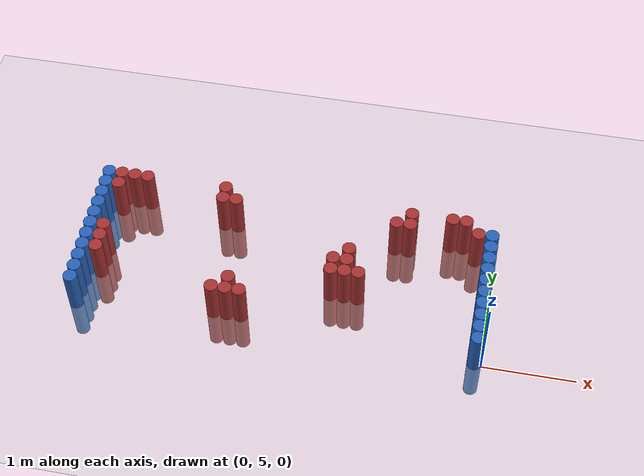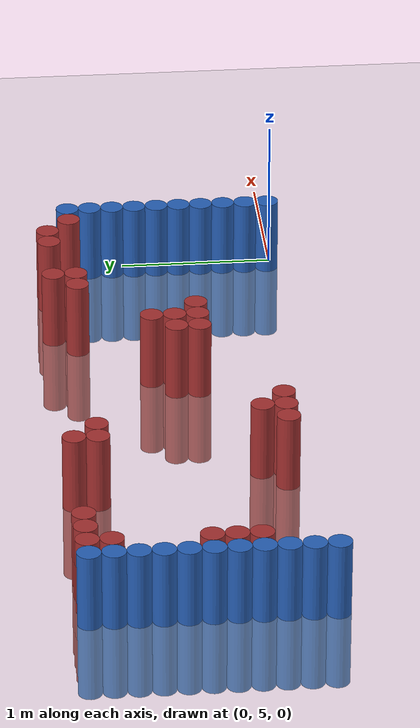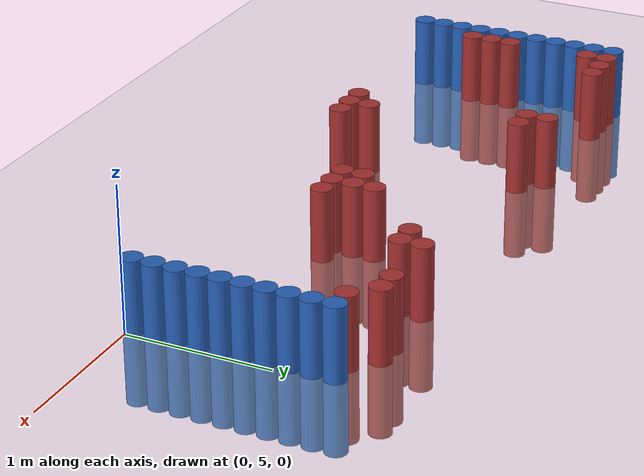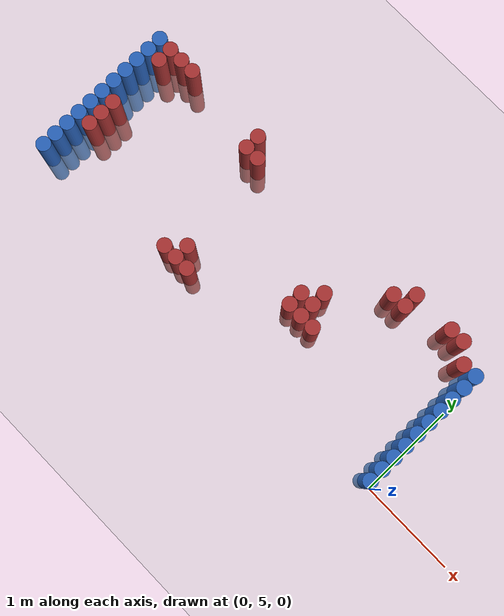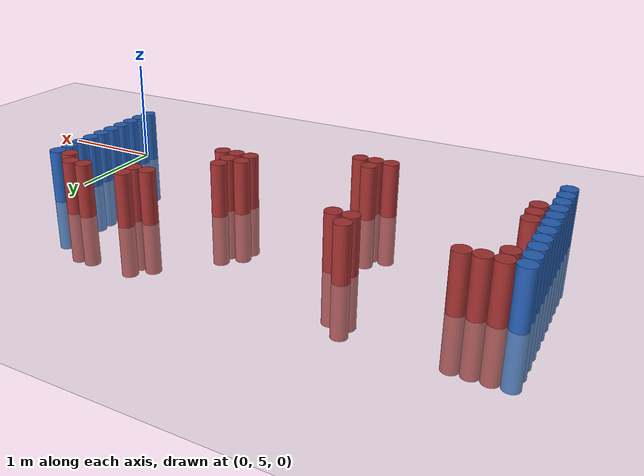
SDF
<sdf version="1.6">
 <world name="world_13">
  <model name="ground_plane">
   <static>1</static>
   <link name="link">
    <collision name="collision">
     <geometry><plane><normal>0 0 1</normal><size>100 100</size></plane></geometry>
     <surface><friction><ode><mu>100</mu><mu2>50</mu2></ode></friction></surface>
    </collision>
    <visual name="visual">
     <cast_shadows>0</cast_shadows>
     <geometry><plane><normal>0 0 1</normal><size>100 100</size></plane></geometry>
     <material>
      <script><uri>file://media/materials/scripts/gazebo.material</uri><name>Gazebo/Grey</name></script>
     </material>
    </visual>
   </link>
  </model>
  <model name="unit_cylinder_94">
   <static>1</static>
   <pose>-0.075000 5.025000 0.000000 0.000000 0.000000 0.000000</pose>
   <link name="link">
    <inertial>
     <mass>1</mass>
     <inertia><ixx>0.145833</ixx><ixy>0</ixy><ixz>0</ixz><iyy>0.145833</iyy><iyz>0</iyz><izz>0.125</izz></inertia>
    </inertial>
    <collision name="collision">
     <geometry><cylinder><radius>0.075000</radius><length>1</length></cylinder></geometry>
    </collision>
    <visual name="visual">
     <geometry><cylinder><radius>0.075000</radius><length>1</length></cylinder></geometry>
     <material>
      <ambient>0.152000 0.379000 0.720000 1</ambient>
      <diffuse>0.152000 0.379000 0.720000 1</diffuse>
     </material>
     <material>
      <script><name>Gazebo/Grey</name><uri>file://media/materials/scripts/gazebo.material</uri></script>
     </material>
    </visual>
   </link>
  </model>
  <model name="unit_cylinder_95">
   <static>1</static>
   <pose>-4.425000 5.025000 0.000000 0.000000 0.000000 0.000000</pose>
   <link name="link">
    <inertial>
     <mass>1</mass>
     <inertia><ixx>0.145833</ixx><ixy>0</ixy><ixz>0</ixz><iyy>0.145833</iyy><iyz>0</iyz><izz>0.125</izz></inertia>
    </inertial>
    <collision name="collision">
     <geometry><cylinder><radius>0.075000</radius><length>1</length></cylinder></geometry>
    </collision>
    <visual name="visual">
     <geometry><cylinder><radius>0.075000</radius><length>1</length></cylinder></geometry>
     <material>
      <ambient>0.152000 0.379000 0.720000 1</ambient>
      <diffuse>0.152000 0.379000 0.720000 1</diffuse>
     </material>
     <material>
      <script><name>Gazebo/Grey</name><uri>file://media/materials/scripts/gazebo.material</uri></script>
     </material>
    </visual>
   </link>
  </model>
  <model name="unit_cylinder_96">
   <static>1</static>
   <pose>-4.425000 5.175000 0.000000 0.000000 0.000000 0.000000</pose>
   <link name="link">
    <inertial>
     <mass>1</mass>
     <inertia><ixx>0.145833</ixx><ixy>0</ixy><ixz>0</ixz><iyy>0.145833</iyy><iyz>0</iyz><izz>0.125</izz></inertia>
    </inertial>
    <collision name="collision">
     <geometry><cylinder><radius>0.075000</radius><length>1</length></cylinder></geometry>
    </collision>
    <visual name="visual">
     <geometry><cylinder><radius>0.075000</radius><length>1</length></cylinder></geometry>
     <material>
      <ambient>0.152000 0.379000 0.720000 1</ambient>
      <diffuse>0.152000 0.379000 0.720000 1</diffuse>
     </material>
     <material>
      <script><name>Gazebo/Grey</name><uri>file://media/materials/scripts/gazebo.material</uri></script>
     </material>
    </visual>
   </link>
  </model>
  <model name="unit_cylinder_97">
   <static>1</static>
   <pose>-4.425000 5.325000 0.000000 0.000000 0.000000 0.000000</pose>
   <link name="link">
    <inertial>
     <mass>1</mass>
     <inertia><ixx>0.145833</ixx><ixy>0</ixy><ixz>0</ixz><iyy>0.145833</iyy><iyz>0</iyz><izz>0.125</izz></inertia>
    </inertial>
    <collision name="collision">
     <geometry><cylinder><radius>0.075000</radius><length>1</length></cylinder></geometry>
    </collision>
    <visual name="visual">
     <geometry><cylinder><radius>0.075000</radius><length>1</length></cylinder></geometry>
     <material>
      <ambient>0.152000 0.379000 0.720000 1</ambient>
      <diffuse>0.152000 0.379000 0.720000 1</diffuse>
     </material>
     <material>
      <script><name>Gazebo/Grey</name><uri>file://media/materials/scripts/gazebo.material</uri></script>
     </material>
    </visual>
   </link>
  </model>
  <model name="unit_cylinder_98">
   <static>1</static>
   <pose>-4.425000 5.475000 0.000000 0.000000 0.000000 0.000000</pose>
   <link name="link">
    <inertial>
     <mass>1</mass>
     <inertia><ixx>0.145833</ixx><ixy>0</ixy><ixz>0</ixz><iyy>0.145833</iyy><iyz>0</iyz><izz>0.125</izz></inertia>
    </inertial>
    <collision name="collision">
     <geometry><cylinder><radius>0.075000</radius><length>1</length></cylinder></geometry>
    </collision>
    <visual name="visual">
     <geometry><cylinder><radius>0.075000</radius><length>1</length></cylinder></geometry>
     <material>
      <ambient>0.152000 0.379000 0.720000 1</ambient>
      <diffuse>0.152000 0.379000 0.720000 1</diffuse>
     </material>
     <material>
      <script><name>Gazebo/Grey</name><uri>file://media/materials/scripts/gazebo.material</uri></script>
     </material>
    </visual>
   </link>
  </model>
  <model name="unit_cylinder_99">
   <static>1</static>
   <pose>-4.425000 5.625000 0.000000 0.000000 0.000000 0.000000</pose>
   <link name="link">
    <inertial>
     <mass>1</mass>
     <inertia><ixx>0.145833</ixx><ixy>0</ixy><ixz>0</ixz><iyy>0.145833</iyy><iyz>0</iyz><izz>0.125</izz></inertia>
    </inertial>
    <collision name="collision">
     <geometry><cylinder><radius>0.075000</radius><length>1</length></cylinder></geometry>
    </collision>
    <visual name="visual">
     <geometry><cylinder><radius>0.075000</radius><length>1</length></cylinder></geometry>
     <material>
      <ambient>0.152000 0.379000 0.720000 1</ambient>
      <diffuse>0.152000 0.379000 0.720000 1</diffuse>
     </material>
     <material>
      <script><name>Gazebo/Grey</name><uri>file://media/materials/scripts/gazebo.material</uri></script>
     </material>
    </visual>
   </link>
  </model>
  <model name="unit_cylinder_100">
   <static>1</static>
   <pose>-4.425000 5.775000 0.000000 0.000000 0.000000 0.000000</pose>
   <link name="link">
    <inertial>
     <mass>1</mass>
     <inertia><ixx>0.145833</ixx><ixy>0</ixy><ixz>0</ixz><iyy>0.145833</iyy><iyz>0</iyz><izz>0.125</izz></inertia>
    </inertial>
    <collision name="collision">
     <geometry><cylinder><radius>0.075000</radius><length>1</length></cylinder></geometry>
    </collision>
    <visual name="visual">
     <geometry><cylinder><radius>0.075000</radius><length>1</length></cylinder></geometry>
     <material>
      <ambient>0.152000 0.379000 0.720000 1</ambient>
      <diffuse>0.152000 0.379000 0.720000 1</diffuse>
     </material>
     <material>
      <script><name>Gazebo/Grey</name><uri>file://media/materials/scripts/gazebo.material</uri></script>
     </material>
    </visual>
   </link>
  </model>
  <model name="unit_cylinder_101">
   <static>1</static>
   <pose>-4.425000 5.925000 0.000000 0.000000 0.000000 0.000000</pose>
   <link name="link">
    <inertial>
     <mass>1</mass>
     <inertia><ixx>0.145833</ixx><ixy>0</ixy><ixz>0</ixz><iyy>0.145833</iyy><iyz>0</iyz><izz>0.125</izz></inertia>
    </inertial>
    <collision name="collision">
     <geometry><cylinder><radius>0.075000</radius><length>1</length></cylinder></geometry>
    </collision>
    <visual name="visual">
     <geometry><cylinder><radius>0.075000</radius><length>1</length></cylinder></geometry>
     <material>
      <ambient>0.152000 0.379000 0.720000 1</ambient>
      <diffuse>0.152000 0.379000 0.720000 1</diffuse>
     </material>
     <material>
      <script><name>Gazebo/Grey</name><uri>file://media/materials/scripts/gazebo.material</uri></script>
     </material>
    </visual>
   </link>
  </model>
  <model name="unit_cylinder_102">
   <static>1</static>
   <pose>-4.425000 6.075000 0.000000 0.000000 0.000000 0.000000</pose>
   <link name="link">
    <inertial>
     <mass>1</mass>
     <inertia><ixx>0.145833</ixx><ixy>0</ixy><ixz>0</ixz><iyy>0.145833</iyy><iyz>0</iyz><izz>0.125</izz></inertia>
    </inertial>
    <collision name="collision">
     <geometry><cylinder><radius>0.075000</radius><length>1</length></cylinder></geometry>
    </collision>
    <visual name="visual">
     <geometry><cylinder><radius>0.075000</radius><length>1</length></cylinder></geometry>
     <material>
      <ambient>0.152000 0.379000 0.720000 1</ambient>
      <diffuse>0.152000 0.379000 0.720000 1</diffuse>
     </material>
     <material>
      <script><name>Gazebo/Grey</name><uri>file://media/materials/scripts/gazebo.material</uri></script>
     </material>
    </visual>
   </link>
  </model>
  <model name="unit_cylinder_103">
   <static>1</static>
   <pose>-4.425000 6.225000 0.000000 0.000000 0.000000 0.000000</pose>
   <link name="link">
    <inertial>
     <mass>1</mass>
     <inertia><ixx>0.145833</ixx><ixy>0</ixy><ixz>0</ixz><iyy>0.145833</iyy><iyz>0</iyz><izz>0.125</izz></inertia>
    </inertial>
    <collision name="collision">
     <geometry><cylinder><radius>0.075000</radius><length>1</length></cylinder></geometry>
    </collision>
    <visual name="visual">
     <geometry><cylinder><radius>0.075000</radius><length>1</length></cylinder></geometry>
     <material>
      <ambient>0.152000 0.379000 0.720000 1</ambient>
      <diffuse>0.152000 0.379000 0.720000 1</diffuse>
     </material>
     <material>
      <script><name>Gazebo/Grey</name><uri>file://media/materials/scripts/gazebo.material</uri></script>
     </material>
    </visual>
   </link>
  </model>
  <model name="unit_cylinder_104">
   <static>1</static>
   <pose>-4.425000 6.375000 0.000000 0.000000 0.000000 0.000000</pose>
   <link name="link">
    <inertial>
     <mass>1</mass>
     <inertia><ixx>0.145833</ixx><ixy>0</ixy><ixz>0</ixz><iyy>0.145833</iyy><iyz>0</iyz><izz>0.125</izz></inertia>
    </inertial>
    <collision name="collision">
     <geometry><cylinder><radius>0.075000</radius><length>1</length></cylinder></geometry>
    </collision>
    <visual name="visual">
     <geometry><cylinder><radius>0.075000</radius><length>1</length></cylinder></geometry>
     <material>
      <ambient>0.152000 0.379000 0.720000 1</ambient>
      <diffuse>0.152000 0.379000 0.720000 1</diffuse>
     </material>
     <material>
      <script><name>Gazebo/Grey</name><uri>file://media/materials/scripts/gazebo.material</uri></script>
     </material>
    </visual>
   </link>
  </model>
  <model name="unit_cylinder_105">
   <static>1</static>
   <pose>-4.425000 6.525000 0.000000 0.000000 0.000000 0.000000</pose>
   <link name="link">
    <inertial>
     <mass>1</mass>
     <inertia><ixx>0.145833</ixx><ixy>0</ixy><ixz>0</ixz><iyy>0.145833</iyy><iyz>0</iyz><izz>0.125</izz></inertia>
    </inertial>
    <collision name="collision">
     <geometry><cylinder><radius>0.075000</radius><length>1</length></cylinder></geometry>
    </collision>
    <visual name="visual">
     <geometry><cylinder><radius>0.075000</radius><length>1</length></cylinder></geometry>
     <material>
      <ambient>0.152000 0.379000 0.720000 1</ambient>
      <diffuse>0.152000 0.379000 0.720000 1</diffuse>
     </material>
     <material>
      <script><name>Gazebo/Grey</name><uri>file://media/materials/scripts/gazebo.material</uri></script>
     </material>
    </visual>
   </link>
  </model>
  <model name="unit_cylinder_126">
   <static>1</static>
   <pose>-4.275000 5.475000 0.000000 0.000000 0.000000 0.000000</pose>
   <link name="link">
    <inertial>
     <mass>1</mass>
     <inertia><ixx>0.145833</ixx><ixy>0</ixy><ixz>0</ixz><iyy>0.145833</iyy><iyz>0</iyz><izz>0.125</izz></inertia>
    </inertial>
    <collision name="collision">
     <geometry><cylinder><radius>0.075000</radius><length>1</length></cylinder></geometry>
    </collision>
    <visual name="visual">
     <geometry><cylinder><radius>0.075000</radius><length>1</length></cylinder></geometry>
     <material>
      <ambient>0.648000 0.192000 0.192000 1</ambient>
      <diffuse>0.648000 0.192000 0.192000 1</diffuse>
     </material>
     <material>
      <script><name>Gazebo/Grey</name><uri>file://media/materials/scripts/gazebo.material</uri></script>
     </material>
    </visual>
   </link>
  </model>
  <model name="unit_cylinder_127">
   <static>1</static>
   <pose>-4.275000 5.625000 0.000000 0.000000 0.000000 0.000000</pose>
   <link name="link">
    <inertial>
     <mass>1</mass>
     <inertia><ixx>0.145833</ixx><ixy>0</ixy><ixz>0</ixz><iyy>0.145833</iyy><iyz>0</iyz><izz>0.125</izz></inertia>
    </inertial>
    <collision name="collision">
     <geometry><cylinder><radius>0.075000</radius><length>1</length></cylinder></geometry>
    </collision>
    <visual name="visual">
     <geometry><cylinder><radius>0.075000</radius><length>1</length></cylinder></geometry>
     <material>
      <ambient>0.648000 0.192000 0.192000 1</ambient>
      <diffuse>0.648000 0.192000 0.192000 1</diffuse>
     </material>
     <material>
      <script><name>Gazebo/Grey</name><uri>file://media/materials/scripts/gazebo.material</uri></script>
     </material>
    </visual>
   </link>
  </model>
  <model name="unit_cylinder_128">
   <static>1</static>
   <pose>-4.275000 5.775000 0.000000 0.000000 0.000000 0.000000</pose>
   <link name="link">
    <inertial>
     <mass>1</mass>
     <inertia><ixx>0.145833</ixx><ixy>0</ixy><ixz>0</ixz><iyy>0.145833</iyy><iyz>0</iyz><izz>0.125</izz></inertia>
    </inertial>
    <collision name="collision">
     <geometry><cylinder><radius>0.075000</radius><length>1</length></cylinder></geometry>
    </collision>
    <visual name="visual">
     <geometry><cylinder><radius>0.075000</radius><length>1</length></cylinder></geometry>
     <material>
      <ambient>0.648000 0.192000 0.192000 1</ambient>
      <diffuse>0.648000 0.192000 0.192000 1</diffuse>
     </material>
     <material>
      <script><name>Gazebo/Grey</name><uri>file://media/materials/scripts/gazebo.material</uri></script>
     </material>
    </visual>
   </link>
  </model>
  <model name="unit_cylinder_129">
   <static>1</static>
   <pose>-4.275000 6.375000 0.000000 0.000000 0.000000 0.000000</pose>
   <link name="link">
    <inertial>
     <mass>1</mass>
     <inertia><ixx>0.145833</ixx><ixy>0</ixy><ixz>0</ixz><iyy>0.145833</iyy><iyz>0</iyz><izz>0.125</izz></inertia>
    </inertial>
    <collision name="collision">
     <geometry><cylinder><radius>0.075000</radius><length>1</length></cylinder></geometry>
    </collision>
    <visual name="visual">
     <geometry><cylinder><radius>0.075000</radius><length>1</length></cylinder></geometry>
     <material>
      <ambient>0.648000 0.192000 0.192000 1</ambient>
      <diffuse>0.648000 0.192000 0.192000 1</diffuse>
     </material>
     <material>
      <script><name>Gazebo/Grey</name><uri>file://media/materials/scripts/gazebo.material</uri></script>
     </material>
    </visual>
   </link>
  </model>
  <model name="unit_cylinder_130">
   <static>1</static>
   <pose>-4.275000 6.525000 0.000000 0.000000 0.000000 0.000000</pose>
   <link name="link">
    <inertial>
     <mass>1</mass>
     <inertia><ixx>0.145833</ixx><ixy>0</ixy><ixz>0</ixz><iyy>0.145833</iyy><iyz>0</iyz><izz>0.125</izz></inertia>
    </inertial>
    <collision name="collision">
     <geometry><cylinder><radius>0.075000</radius><length>1</length></cylinder></geometry>
    </collision>
    <visual name="visual">
     <geometry><cylinder><radius>0.075000</radius><length>1</length></cylinder></geometry>
     <material>
      <ambient>0.648000 0.192000 0.192000 1</ambient>
      <diffuse>0.648000 0.192000 0.192000 1</diffuse>
     </material>
     <material>
      <script><name>Gazebo/Grey</name><uri>file://media/materials/scripts/gazebo.material</uri></script>
     </material>
    </visual>
   </link>
  </model>
  <model name="unit_cylinder_137">
   <static>1</static>
   <pose>-4.125000 6.525000 0.000000 0.000000 0.000000 0.000000</pose>
   <link name="link">
    <inertial>
     <mass>1</mass>
     <inertia><ixx>0.145833</ixx><ixy>0</ixy><ixz>0</ixz><iyy>0.145833</iyy><iyz>0</iyz><izz>0.125</izz></inertia>
    </inertial>
    <collision name="collision">
     <geometry><cylinder><radius>0.075000</radius><length>1</length></cylinder></geometry>
    </collision>
    <visual name="visual">
     <geometry><cylinder><radius>0.075000</radius><length>1</length></cylinder></geometry>
     <material>
      <ambient>0.648000 0.192000 0.192000 1</ambient>
      <diffuse>0.648000 0.192000 0.192000 1</diffuse>
     </material>
     <material>
      <script><name>Gazebo/Grey</name><uri>file://media/materials/scripts/gazebo.material</uri></script>
     </material>
    </visual>
   </link>
  </model>
  <model name="unit_cylinder_148">
   <static>1</static>
   <pose>-3.975000 6.525000 0.000000 0.000000 0.000000 0.000000</pose>
   <link name="link">
    <inertial>
     <mass>1</mass>
     <inertia><ixx>0.145833</ixx><ixy>0</ixy><ixz>0</ixz><iyy>0.145833</iyy><iyz>0</iyz><izz>0.125</izz></inertia>
    </inertial>
    <collision name="collision">
     <geometry><cylinder><radius>0.075000</radius><length>1</length></cylinder></geometry>
    </collision>
    <visual name="visual">
     <geometry><cylinder><radius>0.075000</radius><length>1</length></cylinder></geometry>
     <material>
      <ambient>0.648000 0.192000 0.192000 1</ambient>
      <diffuse>0.648000 0.192000 0.192000 1</diffuse>
     </material>
     <material>
      <script><name>Gazebo/Grey</name><uri>file://media/materials/scripts/gazebo.material</uri></script>
     </material>
    </visual>
   </link>
  </model>
  <model name="unit_cylinder_177">
   <static>1</static>
   <pose>-3.075000 6.375000 0.000000 0.000000 0.000000 0.000000</pose>
   <link name="link">
    <inertial>
     <mass>1</mass>
     <inertia><ixx>0.145833</ixx><ixy>0</ixy><ixz>0</ixz><iyy>0.145833</iyy><iyz>0</iyz><izz>0.125</izz></inertia>
    </inertial>
    <collision name="collision">
     <geometry><cylinder><radius>0.075000</radius><length>1</length></cylinder></geometry>
    </collision>
    <visual name="visual">
     <geometry><cylinder><radius>0.075000</radius><length>1</length></cylinder></geometry>
     <material>
      <ambient>0.648000 0.192000 0.192000 1</ambient>
      <diffuse>0.648000 0.192000 0.192000 1</diffuse>
     </material>
     <material>
      <script><name>Gazebo/Grey</name><uri>file://media/materials/scripts/gazebo.material</uri></script>
     </material>
    </visual>
   </link>
  </model>
  <model name="unit_cylinder_178">
   <static>1</static>
   <pose>-3.075000 6.525000 0.000000 0.000000 0.000000 0.000000</pose>
   <link name="link">
    <inertial>
     <mass>1</mass>
     <inertia><ixx>0.145833</ixx><ixy>0</ixy><ixz>0</ixz><iyy>0.145833</iyy><iyz>0</iyz><izz>0.125</izz></inertia>
    </inertial>
    <collision name="collision">
     <geometry><cylinder><radius>0.075000</radius><length>1</length></cylinder></geometry>
    </collision>
    <visual name="visual">
     <geometry><cylinder><radius>0.075000</radius><length>1</length></cylinder></geometry>
     <material>
      <ambient>0.648000 0.192000 0.192000 1</ambient>
      <diffuse>0.648000 0.192000 0.192000 1</diffuse>
     </material>
     <material>
      <script><name>Gazebo/Grey</name><uri>file://media/materials/scripts/gazebo.material</uri></script>
     </material>
    </visual>
   </link>
  </model>
  <model name="unit_cylinder_186">
   <static>1</static>
   <pose>-2.925000 5.175000 0.000000 0.000000 0.000000 0.000000</pose>
   <link name="link">
    <inertial>
     <mass>1</mass>
     <inertia><ixx>0.145833</ixx><ixy>0</ixy><ixz>0</ixz><iyy>0.145833</iyy><iyz>0</iyz><izz>0.125</izz></inertia>
    </inertial>
    <collision name="collision">
     <geometry><cylinder><radius>0.075000</radius><length>1</length></cylinder></geometry>
    </collision>
    <visual name="visual">
     <geometry><cylinder><radius>0.075000</radius><length>1</length></cylinder></geometry>
     <material>
      <ambient>0.648000 0.192000 0.192000 1</ambient>
      <diffuse>0.648000 0.192000 0.192000 1</diffuse>
     </material>
     <material>
      <script><name>Gazebo/Grey</name><uri>file://media/materials/scripts/gazebo.material</uri></script>
     </material>
    </visual>
   </link>
  </model>
  <model name="unit_cylinder_187">
   <static>1</static>
   <pose>-2.925000 6.375000 0.000000 0.000000 0.000000 0.000000</pose>
   <link name="link">
    <inertial>
     <mass>1</mass>
     <inertia><ixx>0.145833</ixx><ixy>0</ixy><ixz>0</ixz><iyy>0.145833</iyy><iyz>0</iyz><izz>0.125</izz></inertia>
    </inertial>
    <collision name="collision">
     <geometry><cylinder><radius>0.075000</radius><length>1</length></cylinder></geometry>
    </collision>
    <visual name="visual">
     <geometry><cylinder><radius>0.075000</radius><length>1</length></cylinder></geometry>
     <material>
      <ambient>0.648000 0.192000 0.192000 1</ambient>
      <diffuse>0.648000 0.192000 0.192000 1</diffuse>
     </material>
     <material>
      <script><name>Gazebo/Grey</name><uri>file://media/materials/scripts/gazebo.material</uri></script>
     </material>
    </visual>
   </link>
  </model>
  <model name="unit_cylinder_193">
   <static>1</static>
   <pose>-2.775000 5.175000 0.000000 0.000000 0.000000 0.000000</pose>
   <link name="link">
    <inertial>
     <mass>1</mass>
     <inertia><ixx>0.145833</ixx><ixy>0</ixy><ixz>0</ixz><iyy>0.145833</iyy><iyz>0</iyz><izz>0.125</izz></inertia>
    </inertial>
    <collision name="collision">
     <geometry><cylinder><radius>0.075000</radius><length>1</length></cylinder></geometry>
    </collision>
    <visual name="visual">
     <geometry><cylinder><radius>0.075000</radius><length>1</length></cylinder></geometry>
     <material>
      <ambient>0.648000 0.192000 0.192000 1</ambient>
      <diffuse>0.648000 0.192000 0.192000 1</diffuse>
     </material>
     <material>
      <script><name>Gazebo/Grey</name><uri>file://media/materials/scripts/gazebo.material</uri></script>
     </material>
    </visual>
   </link>
  </model>
  <model name="unit_cylinder_194">
   <static>1</static>
   <pose>-2.775000 5.325000 0.000000 0.000000 0.000000 0.000000</pose>
   <link name="link">
    <inertial>
     <mass>1</mass>
     <inertia><ixx>0.145833</ixx><ixy>0</ixy><ixz>0</ixz><iyy>0.145833</iyy><iyz>0</iyz><izz>0.125</izz></inertia>
    </inertial>
    <collision name="collision">
     <geometry><cylinder><radius>0.075000</radius><length>1</length></cylinder></geometry>
    </collision>
    <visual name="visual">
     <geometry><cylinder><radius>0.075000</radius><length>1</length></cylinder></geometry>
     <material>
      <ambient>0.648000 0.192000 0.192000 1</ambient>
      <diffuse>0.648000 0.192000 0.192000 1</diffuse>
     </material>
     <material>
      <script><name>Gazebo/Grey</name><uri>file://media/materials/scripts/gazebo.material</uri></script>
     </material>
    </visual>
   </link>
  </model>
  <model name="unit_cylinder_199">
   <static>1</static>
   <pose>-2.625000 5.175000 0.000000 0.000000 0.000000 0.000000</pose>
   <link name="link">
    <inertial>
     <mass>1</mass>
     <inertia><ixx>0.145833</ixx><ixy>0</ixy><ixz>0</ixz><iyy>0.145833</iyy><iyz>0</iyz><izz>0.125</izz></inertia>
    </inertial>
    <collision name="collision">
     <geometry><cylinder><radius>0.075000</radius><length>1</length></cylinder></geometry>
    </collision>
    <visual name="visual">
     <geometry><cylinder><radius>0.075000</radius><length>1</length></cylinder></geometry>
     <material>
      <ambient>0.648000 0.192000 0.192000 1</ambient>
      <diffuse>0.648000 0.192000 0.192000 1</diffuse>
     </material>
     <material>
      <script><name>Gazebo/Grey</name><uri>file://media/materials/scripts/gazebo.material</uri></script>
     </material>
    </visual>
   </link>
  </model>
  <model name="unit_cylinder_200">
   <static>1</static>
   <pose>-1.725000 5.625000 0.000000 0.000000 0.000000 0.000000</pose>
   <link name="link">
    <inertial>
     <mass>1</mass>
     <inertia><ixx>0.145833</ixx><ixy>0</ixy><ixz>0</ixz><iyy>0.145833</iyy><iyz>0</iyz><izz>0.125</izz></inertia>
    </inertial>
    <collision name="collision">
     <geometry><cylinder><radius>0.075000</radius><length>1</length></cylinder></geometry>
    </collision>
    <visual name="visual">
     <geometry><cylinder><radius>0.075000</radius><length>1</length></cylinder></geometry>
     <material>
      <ambient>0.648000 0.192000 0.192000 1</ambient>
      <diffuse>0.648000 0.192000 0.192000 1</diffuse>
     </material>
     <material>
      <script><name>Gazebo/Grey</name><uri>file://media/materials/scripts/gazebo.material</uri></script>
     </material>
    </visual>
   </link>
  </model>
  <model name="unit_cylinder_201">
   <static>1</static>
   <pose>-1.725000 5.775000 0.000000 0.000000 0.000000 0.000000</pose>
   <link name="link">
    <inertial>
     <mass>1</mass>
     <inertia><ixx>0.145833</ixx><ixy>0</ixy><ixz>0</ixz><iyy>0.145833</iyy><iyz>0</iyz><izz>0.125</izz></inertia>
    </inertial>
    <collision name="collision">
     <geometry><cylinder><radius>0.075000</radius><length>1</length></cylinder></geometry>
    </collision>
    <visual name="visual">
     <geometry><cylinder><radius>0.075000</radius><length>1</length></cylinder></geometry>
     <material>
      <ambient>0.648000 0.192000 0.192000 1</ambient>
      <diffuse>0.648000 0.192000 0.192000 1</diffuse>
     </material>
     <material>
      <script><name>Gazebo/Grey</name><uri>file://media/materials/scripts/gazebo.material</uri></script>
     </material>
    </visual>
   </link>
  </model>
  <model name="unit_cylinder_202">
   <static>1</static>
   <pose>-1.575000 5.625000 0.000000 0.000000 0.000000 0.000000</pose>
   <link name="link">
    <inertial>
     <mass>1</mass>
     <inertia><ixx>0.145833</ixx><ixy>0</ixy><ixz>0</ixz><iyy>0.145833</iyy><iyz>0</iyz><izz>0.125</izz></inertia>
    </inertial>
    <collision name="collision">
     <geometry><cylinder><radius>0.075000</radius><length>1</length></cylinder></geometry>
    </collision>
    <visual name="visual">
     <geometry><cylinder><radius>0.075000</radius><length>1</length></cylinder></geometry>
     <material>
      <ambient>0.648000 0.192000 0.192000 1</ambient>
      <diffuse>0.648000 0.192000 0.192000 1</diffuse>
     </material>
     <material>
      <script><name>Gazebo/Grey</name><uri>file://media/materials/scripts/gazebo.material</uri></script>
     </material>
    </visual>
   </link>
  </model>
  <model name="unit_cylinder_203">
   <static>1</static>
   <pose>-1.575000 5.775000 0.000000 0.000000 0.000000 0.000000</pose>
   <link name="link">
    <inertial>
     <mass>1</mass>
     <inertia><ixx>0.145833</ixx><ixy>0</ixy><ixz>0</ixz><iyy>0.145833</iyy><iyz>0</iyz><izz>0.125</izz></inertia>
    </inertial>
    <collision name="collision">
     <geometry><cylinder><radius>0.075000</radius><length>1</length></cylinder></geometry>
    </collision>
    <visual name="visual">
     <geometry><cylinder><radius>0.075000</radius><length>1</length></cylinder></geometry>
     <material>
      <ambient>0.648000 0.192000 0.192000 1</ambient>
      <diffuse>0.648000 0.192000 0.192000 1</diffuse>
     </material>
     <material>
      <script><name>Gazebo/Grey</name><uri>file://media/materials/scripts/gazebo.material</uri></script>
     </material>
    </visual>
   </link>
  </model>
  <model name="unit_cylinder_204">
   <static>1</static>
   <pose>-1.575000 5.925000 0.000000 0.000000 0.000000 0.000000</pose>
   <link name="link">
    <inertial>
     <mass>1</mass>
     <inertia><ixx>0.145833</ixx><ixy>0</ixy><ixz>0</ixz><iyy>0.145833</iyy><iyz>0</iyz><izz>0.125</izz></inertia>
    </inertial>
    <collision name="collision">
     <geometry><cylinder><radius>0.075000</radius><length>1</length></cylinder></geometry>
    </collision>
    <visual name="visual">
     <geometry><cylinder><radius>0.075000</radius><length>1</length></cylinder></geometry>
     <material>
      <ambient>0.648000 0.192000 0.192000 1</ambient>
      <diffuse>0.648000 0.192000 0.192000 1</diffuse>
     </material>
     <material>
      <script><name>Gazebo/Grey</name><uri>file://media/materials/scripts/gazebo.material</uri></script>
     </material>
    </visual>
   </link>
  </model>
  <model name="unit_cylinder_210">
   <static>1</static>
   <pose>-1.425000 5.625000 0.000000 0.000000 0.000000 0.000000</pose>
   <link name="link">
    <inertial>
     <mass>1</mass>
     <inertia><ixx>0.145833</ixx><ixy>0</ixy><ixz>0</ixz><iyy>0.145833</iyy><iyz>0</iyz><izz>0.125</izz></inertia>
    </inertial>
    <collision name="collision">
     <geometry><cylinder><radius>0.075000</radius><length>1</length></cylinder></geometry>
    </collision>
    <visual name="visual">
     <geometry><cylinder><radius>0.075000</radius><length>1</length></cylinder></geometry>
     <material>
      <ambient>0.648000 0.192000 0.192000 1</ambient>
      <diffuse>0.648000 0.192000 0.192000 1</diffuse>
     </material>
     <material>
      <script><name>Gazebo/Grey</name><uri>file://media/materials/scripts/gazebo.material</uri></script>
     </material>
    </visual>
   </link>
  </model>
  <model name="unit_cylinder_223">
   <static>1</static>
   <pose>-1.125000 6.375000 0.000000 0.000000 0.000000 0.000000</pose>
   <link name="link">
    <inertial>
     <mass>1</mass>
     <inertia><ixx>0.145833</ixx><ixy>0</ixy><ixz>0</ixz><iyy>0.145833</iyy><iyz>0</iyz><izz>0.125</izz></inertia>
    </inertial>
    <collision name="collision">
     <geometry><cylinder><radius>0.075000</radius><length>1</length></cylinder></geometry>
    </collision>
    <visual name="visual">
     <geometry><cylinder><radius>0.075000</radius><length>1</length></cylinder></geometry>
     <material>
      <ambient>0.648000 0.192000 0.192000 1</ambient>
      <diffuse>0.648000 0.192000 0.192000 1</diffuse>
     </material>
     <material>
      <script><name>Gazebo/Grey</name><uri>file://media/materials/scripts/gazebo.material</uri></script>
     </material>
    </visual>
   </link>
  </model>
  <model name="unit_cylinder_225">
   <static>1</static>
   <pose>-0.975000 6.375000 0.000000 0.000000 0.000000 0.000000</pose>
   <link name="link">
    <inertial>
     <mass>1</mass>
     <inertia><ixx>0.145833</ixx><ixy>0</ixy><ixz>0</ixz><iyy>0.145833</iyy><iyz>0</iyz><izz>0.125</izz></inertia>
    </inertial>
    <collision name="collision">
     <geometry><cylinder><radius>0.075000</radius><length>1</length></cylinder></geometry>
    </collision>
    <visual name="visual">
     <geometry><cylinder><radius>0.075000</radius><length>1</length></cylinder></geometry>
     <material>
      <ambient>0.648000 0.192000 0.192000 1</ambient>
      <diffuse>0.648000 0.192000 0.192000 1</diffuse>
     </material>
     <material>
      <script><name>Gazebo/Grey</name><uri>file://media/materials/scripts/gazebo.material</uri></script>
     </material>
    </visual>
   </link>
  </model>
  <model name="unit_cylinder_226">
   <static>1</static>
   <pose>-0.975000 6.525000 0.000000 0.000000 0.000000 0.000000</pose>
   <link name="link">
    <inertial>
     <mass>1</mass>
     <inertia><ixx>0.145833</ixx><ixy>0</ixy><ixz>0</ixz><iyy>0.145833</iyy><iyz>0</iyz><izz>0.125</izz></inertia>
    </inertial>
    <collision name="collision">
     <geometry><cylinder><radius>0.075000</radius><length>1</length></cylinder></geometry>
    </collision>
    <visual name="visual">
     <geometry><cylinder><radius>0.075000</radius><length>1</length></cylinder></geometry>
     <material>
      <ambient>0.648000 0.192000 0.192000 1</ambient>
      <diffuse>0.648000 0.192000 0.192000 1</diffuse>
     </material>
     <material>
      <script><name>Gazebo/Grey</name><uri>file://media/materials/scripts/gazebo.material</uri></script>
     </material>
    </visual>
   </link>
  </model>
  <model name="unit_cylinder_230">
   <static>1</static>
   <pose>-0.525000 6.525000 0.000000 0.000000 0.000000 0.000000</pose>
   <link name="link">
    <inertial>
     <mass>1</mass>
     <inertia><ixx>0.145833</ixx><ixy>0</ixy><ixz>0</ixz><iyy>0.145833</iyy><iyz>0</iyz><izz>0.125</izz></inertia>
    </inertial>
    <collision name="collision">
     <geometry><cylinder><radius>0.075000</radius><length>1</length></cylinder></geometry>
    </collision>
    <visual name="visual">
     <geometry><cylinder><radius>0.075000</radius><length>1</length></cylinder></geometry>
     <material>
      <ambient>0.648000 0.192000 0.192000 1</ambient>
      <diffuse>0.648000 0.192000 0.192000 1</diffuse>
     </material>
     <material>
      <script><name>Gazebo/Grey</name><uri>file://media/materials/scripts/gazebo.material</uri></script>
     </material>
    </visual>
   </link>
  </model>
  <model name="unit_cylinder_234">
   <static>1</static>
   <pose>-0.375000 6.525000 0.000000 0.000000 0.000000 0.000000</pose>
   <link name="link">
    <inertial>
     <mass>1</mass>
     <inertia><ixx>0.145833</ixx><ixy>0</ixy><ixz>0</ixz><iyy>0.145833</iyy><iyz>0</iyz><izz>0.125</izz></inertia>
    </inertial>
    <collision name="collision">
     <geometry><cylinder><radius>0.075000</radius><length>1</length></cylinder></geometry>
    </collision>
    <visual name="visual">
     <geometry><cylinder><radius>0.075000</radius><length>1</length></cylinder></geometry>
     <material>
      <ambient>0.648000 0.192000 0.192000 1</ambient>
      <diffuse>0.648000 0.192000 0.192000 1</diffuse>
     </material>
     <material>
      <script><name>Gazebo/Grey</name><uri>file://media/materials/scripts/gazebo.material</uri></script>
     </material>
    </visual>
   </link>
  </model>
  <model name="unit_cylinder_241">
   <static>1</static>
   <pose>-0.225000 6.375000 0.000000 0.000000 0.000000 0.000000</pose>
   <link name="link">
    <inertial>
     <mass>1</mass>
     <inertia><ixx>0.145833</ixx><ixy>0</ixy><ixz>0</ixz><iyy>0.145833</iyy><iyz>0</iyz><izz>0.125</izz></inertia>
    </inertial>
    <collision name="collision">
     <geometry><cylinder><radius>0.075000</radius><length>1</length></cylinder></geometry>
    </collision>
    <visual name="visual">
     <geometry><cylinder><radius>0.075000</radius><length>1</length></cylinder></geometry>
     <material>
      <ambient>0.648000 0.192000 0.192000 1</ambient>
      <diffuse>0.648000 0.192000 0.192000 1</diffuse>
     </material>
     <material>
      <script><name>Gazebo/Grey</name><uri>file://media/materials/scripts/gazebo.material</uri></script>
     </material>
    </visual>
   </link>
  </model>
  <model name="unit_cylinder_251">
   <static>1</static>
   <pose>-0.075000 5.175000 0.000000 0.000000 0.000000 0.000000</pose>
   <link name="link">
    <inertial>
     <mass>1</mass>
     <inertia><ixx>0.145833</ixx><ixy>0</ixy><ixz>0</ixz><iyy>0.145833</iyy><iyz>0</iyz><izz>0.125</izz></inertia>
    </inertial>
    <collision name="collision">
     <geometry><cylinder><radius>0.075000</radius><length>1</length></cylinder></geometry>
    </collision>
    <visual name="visual">
     <geometry><cylinder><radius>0.075000</radius><length>1</length></cylinder></geometry>
     <material>
      <ambient>0.152000 0.379000 0.720000 1</ambient>
      <diffuse>0.152000 0.379000 0.720000 1</diffuse>
     </material>
     <material>
      <script><name>Gazebo/Grey</name><uri>file://media/materials/scripts/gazebo.material</uri></script>
     </material>
    </visual>
   </link>
  </model>
  <model name="unit_cylinder_252">
   <static>1</static>
   <pose>-0.075000 5.325000 0.000000 0.000000 0.000000 0.000000</pose>
   <link name="link">
    <inertial>
     <mass>1</mass>
     <inertia><ixx>0.145833</ixx><ixy>0</ixy><ixz>0</ixz><iyy>0.145833</iyy><iyz>0</iyz><izz>0.125</izz></inertia>
    </inertial>
    <collision name="collision">
     <geometry><cylinder><radius>0.075000</radius><length>1</length></cylinder></geometry>
    </collision>
    <visual name="visual">
     <geometry><cylinder><radius>0.075000</radius><length>1</length></cylinder></geometry>
     <material>
      <ambient>0.152000 0.379000 0.720000 1</ambient>
      <diffuse>0.152000 0.379000 0.720000 1</diffuse>
     </material>
     <material>
      <script><name>Gazebo/Grey</name><uri>file://media/materials/scripts/gazebo.material</uri></script>
     </material>
    </visual>
   </link>
  </model>
  <model name="unit_cylinder_253">
   <static>1</static>
   <pose>-0.075000 5.475000 0.000000 0.000000 0.000000 0.000000</pose>
   <link name="link">
    <inertial>
     <mass>1</mass>
     <inertia><ixx>0.145833</ixx><ixy>0</ixy><ixz>0</ixz><iyy>0.145833</iyy><iyz>0</iyz><izz>0.125</izz></inertia>
    </inertial>
    <collision name="collision">
     <geometry><cylinder><radius>0.075000</radius><length>1</length></cylinder></geometry>
    </collision>
    <visual name="visual">
     <geometry><cylinder><radius>0.075000</radius><length>1</length></cylinder></geometry>
     <material>
      <ambient>0.152000 0.379000 0.720000 1</ambient>
      <diffuse>0.152000 0.379000 0.720000 1</diffuse>
     </material>
     <material>
      <script><name>Gazebo/Grey</name><uri>file://media/materials/scripts/gazebo.material</uri></script>
     </material>
    </visual>
   </link>
  </model>
  <model name="unit_cylinder_254">
   <static>1</static>
   <pose>-0.075000 5.625000 0.000000 0.000000 0.000000 0.000000</pose>
   <link name="link">
    <inertial>
     <mass>1</mass>
     <inertia><ixx>0.145833</ixx><ixy>0</ixy><ixz>0</ixz><iyy>0.145833</iyy><iyz>0</iyz><izz>0.125</izz></inertia>
    </inertial>
    <collision name="collision">
     <geometry><cylinder><radius>0.075000</radius><length>1</length></cylinder></geometry>
    </collision>
    <visual name="visual">
     <geometry><cylinder><radius>0.075000</radius><length>1</length></cylinder></geometry>
     <material>
      <ambient>0.152000 0.379000 0.720000 1</ambient>
      <diffuse>0.152000 0.379000 0.720000 1</diffuse>
     </material>
     <material>
      <script><name>Gazebo/Grey</name><uri>file://media/materials/scripts/gazebo.material</uri></script>
     </material>
    </visual>
   </link>
  </model>
  <model name="unit_cylinder_255">
   <static>1</static>
   <pose>-0.075000 5.775000 0.000000 0.000000 0.000000 0.000000</pose>
   <link name="link">
    <inertial>
     <mass>1</mass>
     <inertia><ixx>0.145833</ixx><ixy>0</ixy><ixz>0</ixz><iyy>0.145833</iyy><iyz>0</iyz><izz>0.125</izz></inertia>
    </inertial>
    <collision name="collision">
     <geometry><cylinder><radius>0.075000</radius><length>1</length></cylinder></geometry>
    </collision>
    <visual name="visual">
     <geometry><cylinder><radius>0.075000</radius><length>1</length></cylinder></geometry>
     <material>
      <ambient>0.152000 0.379000 0.720000 1</ambient>
      <diffuse>0.152000 0.379000 0.720000 1</diffuse>
     </material>
     <material>
      <script><name>Gazebo/Grey</name><uri>file://media/materials/scripts/gazebo.material</uri></script>
     </material>
    </visual>
   </link>
  </model>
  <model name="unit_cylinder_256">
   <static>1</static>
   <pose>-0.075000 5.925000 0.000000 0.000000 0.000000 0.000000</pose>
   <link name="link">
    <inertial>
     <mass>1</mass>
     <inertia><ixx>0.145833</ixx><ixy>0</ixy><ixz>0</ixz><iyy>0.145833</iyy><iyz>0</iyz><izz>0.125</izz></inertia>
    </inertial>
    <collision name="collision">
     <geometry><cylinder><radius>0.075000</radius><length>1</length></cylinder></geometry>
    </collision>
    <visual name="visual">
     <geometry><cylinder><radius>0.075000</radius><length>1</length></cylinder></geometry>
     <material>
      <ambient>0.152000 0.379000 0.720000 1</ambient>
      <diffuse>0.152000 0.379000 0.720000 1</diffuse>
     </material>
     <material>
      <script><name>Gazebo/Grey</name><uri>file://media/materials/scripts/gazebo.material</uri></script>
     </material>
    </visual>
   </link>
  </model>
  <model name="unit_cylinder_257">
   <static>1</static>
   <pose>-0.075000 6.075000 0.000000 0.000000 0.000000 0.000000</pose>
   <link name="link">
    <inertial>
     <mass>1</mass>
     <inertia><ixx>0.145833</ixx><ixy>0</ixy><ixz>0</ixz><iyy>0.145833</iyy><iyz>0</iyz><izz>0.125</izz></inertia>
    </inertial>
    <collision name="collision">
     <geometry><cylinder><radius>0.075000</radius><length>1</length></cylinder></geometry>
    </collision>
    <visual name="visual">
     <geometry><cylinder><radius>0.075000</radius><length>1</length></cylinder></geometry>
     <material>
      <ambient>0.152000 0.379000 0.720000 1</ambient>
      <diffuse>0.152000 0.379000 0.720000 1</diffuse>
     </material>
     <material>
      <script><name>Gazebo/Grey</name><uri>file://media/materials/scripts/gazebo.material</uri></script>
     </material>
    </visual>
   </link>
  </model>
  <model name="unit_cylinder_258">
   <static>1</static>
   <pose>-0.075000 6.225000 0.000000 0.000000 0.000000 0.000000</pose>
   <link name="link">
    <inertial>
     <mass>1</mass>
     <inertia><ixx>0.145833</ixx><ixy>0</ixy><ixz>0</ixz><iyy>0.145833</iyy><iyz>0</iyz><izz>0.125</izz></inertia>
    </inertial>
    <collision name="collision">
     <geometry><cylinder><radius>0.075000</radius><length>1</length></cylinder></geometry>
    </collision>
    <visual name="visual">
     <geometry><cylinder><radius>0.075000</radius><length>1</length></cylinder></geometry>
     <material>
      <ambient>0.152000 0.379000 0.720000 1</ambient>
      <diffuse>0.152000 0.379000 0.720000 1</diffuse>
     </material>
     <material>
      <script><name>Gazebo/Grey</name><uri>file://media/materials/scripts/gazebo.material</uri></script>
     </material>
    </visual>
   </link>
  </model>
  <model name="unit_cylinder_259">
   <static>1</static>
   <pose>-0.075000 6.375000 0.000000 0.000000 0.000000 0.000000</pose>
   <link name="link">
    <inertial>
     <mass>1</mass>
     <inertia><ixx>0.145833</ixx><ixy>0</ixy><ixz>0</ixz><iyy>0.145833</iyy><iyz>0</iyz><izz>0.125</izz></inertia>
    </inertial>
    <collision name="collision">
     <geometry><cylinder><radius>0.075000</radius><length>1</length></cylinder></geometry>
    </collision>
    <visual name="visual">
     <geometry><cylinder><radius>0.075000</radius><length>1</length></cylinder></geometry>
     <material>
      <ambient>0.152000 0.379000 0.720000 1</ambient>
      <diffuse>0.152000 0.379000 0.720000 1</diffuse>
     </material>
     <material>
      <script><name>Gazebo/Grey</name><uri>file://media/materials/scripts/gazebo.material</uri></script>
     </material>
    </visual>
   </link>
  </model>
 </world>
</sdf>
